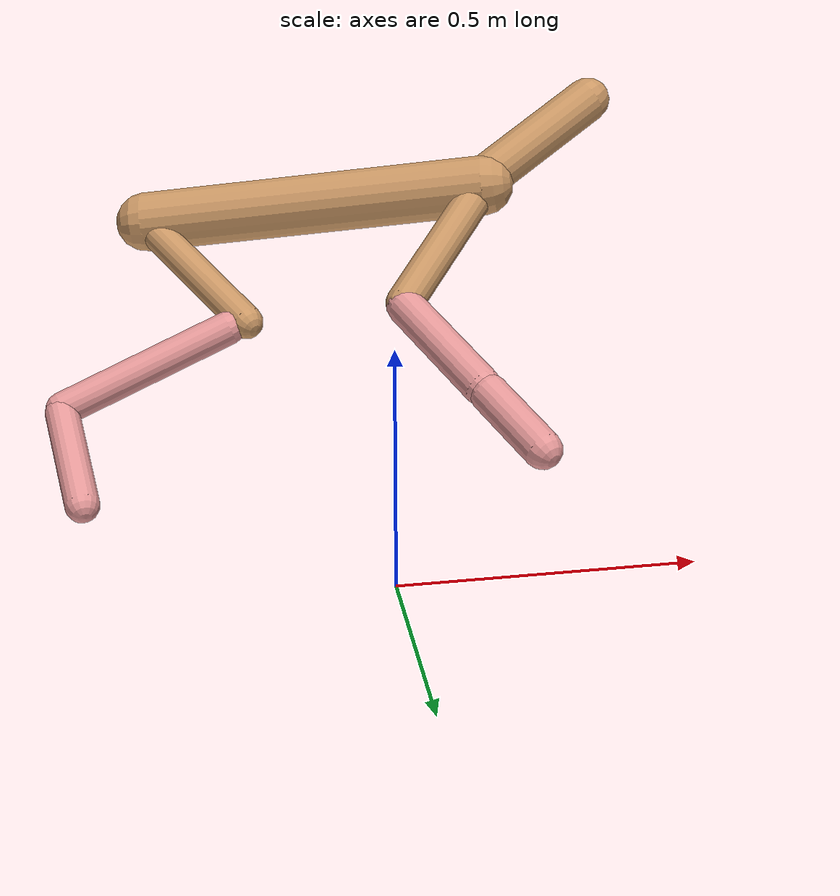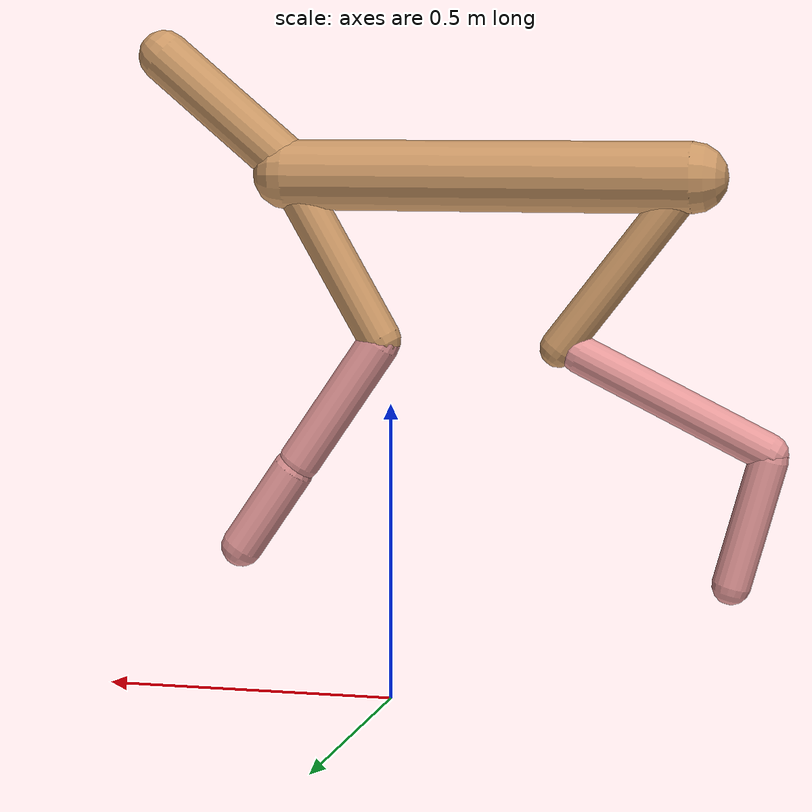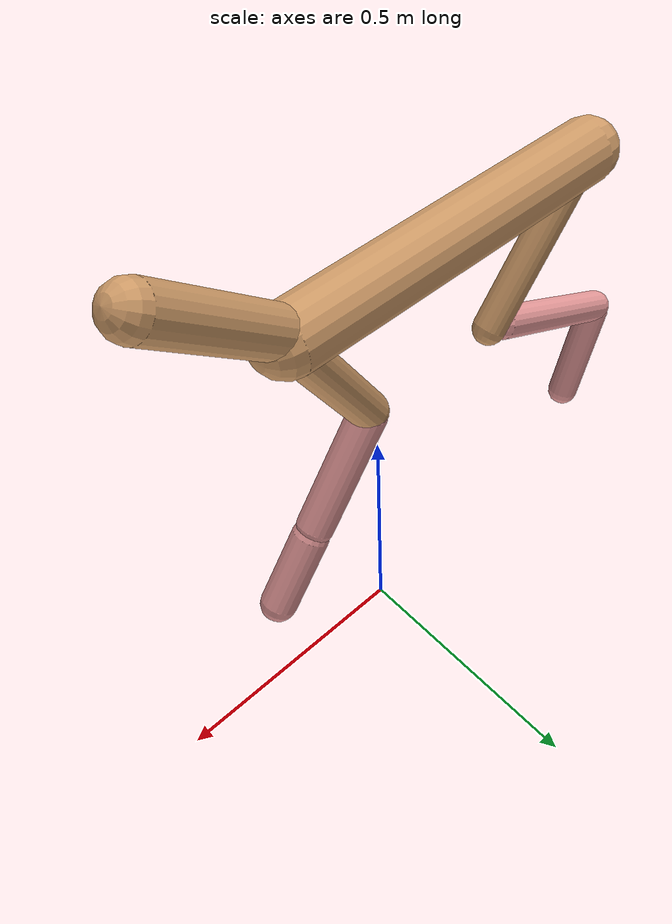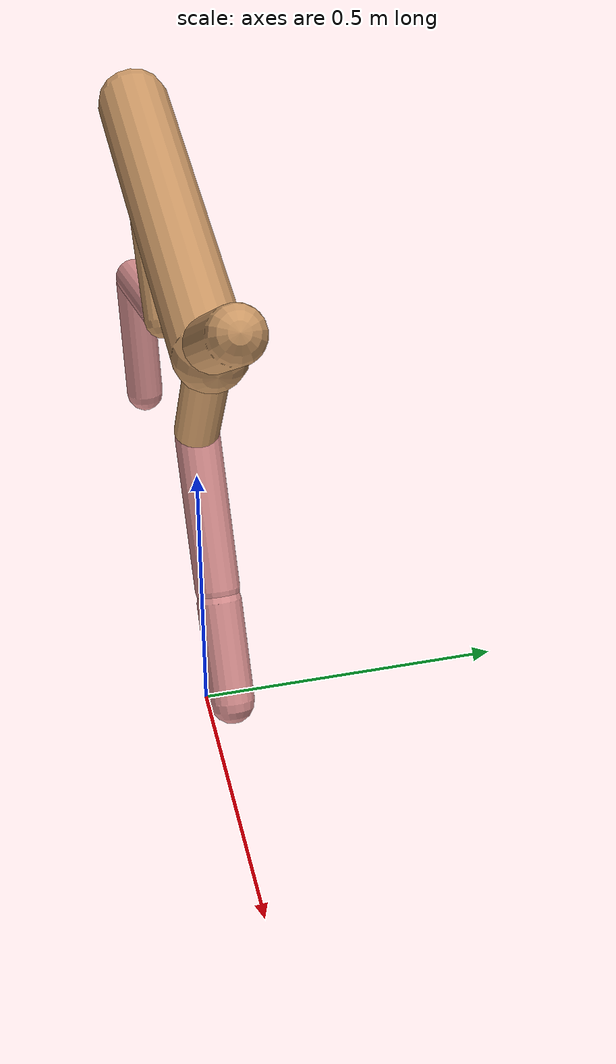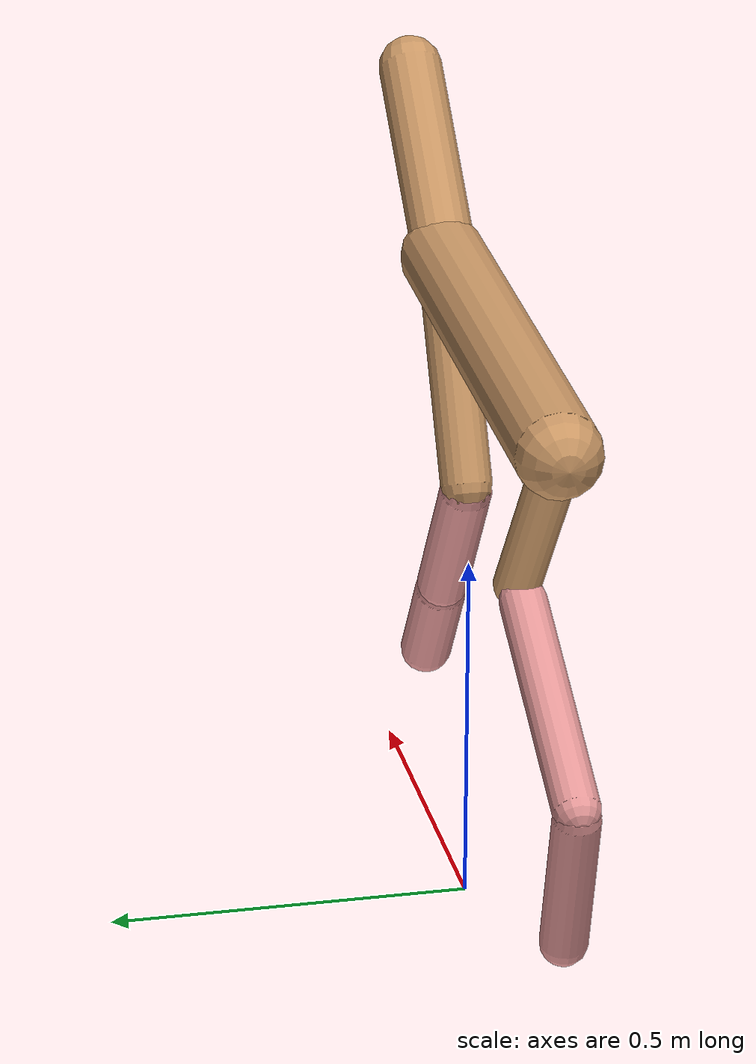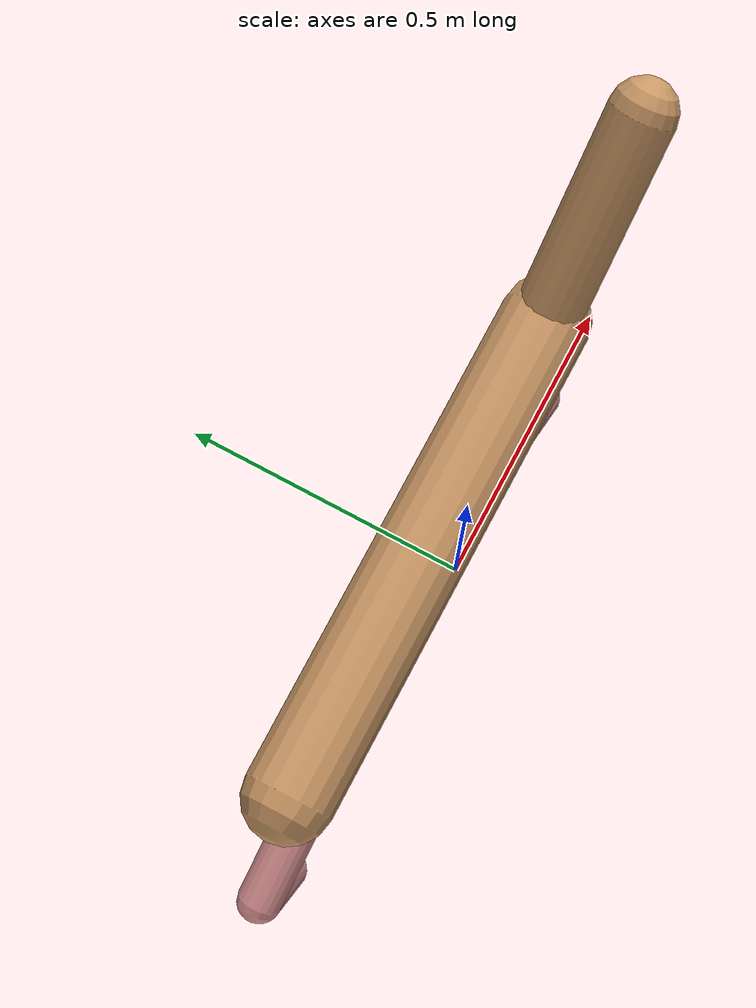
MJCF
<mujoco model="cheetah">
  <compiler angle="radian" coordinate="local" inertiafromgeom="true" settotalmass="14" />
  <default>
    <joint armature=".1" damping=".01" limited="true" solimplimit="0 .8 .03" solreflimit=".02 1" stiffness="8" />
    <geom conaffinity="0" condim="3" contype="1" friction="0.8 .1 .1" rgba="0.8 0.6 .4 1" solimp="0.0 0.8 0.01" solref="0.02 1" />
    <motor ctrllimited="true" ctrlrange="-1 1" />
  </default>
  <size nstack="300000" nuser_geom="1" />
  <option gravity="0 0 -9.81" timestep="0.01" />
  <worldbody>
    <body name="torso" pos="0.0 0.0 0.8805968023599999">
      <joint armature="0" axis="1 0 0" damping="0" limited="false" name="ignorex" pos="0 0 0" stiffness="0" type="slide" />
      <joint armature="0" axis="0 0 1" damping="0" limited="false" name="ignorez" pos="0 0 0" stiffness="0" type="slide" />
      <joint armature="0" axis="0 1 0" damping="0" limited="false" name="ignorey" pos="0 0 0" stiffness="0" type="hinge" />
      <geom fromto="-0.5 0.0 0.0 0.17570261653754315 0.0 0.0" name="torso" size="0.058462642393667594" type="capsule" />
      <geom axisangle="0 1 0 .87" name="head" pos="0.27570261653754313 0.0 0.1" size="0.04379349378284822 0.15" type="capsule" />

      <body name="bthigh" pos="-.5 0 0">
        <joint axis="0 1 0" damping="6" name="bthigh" pos="0 0 0" range="-.52 1.05" stiffness="240" type="hinge" />
        <geom axisangle="0 1 0 -3.8" name="bthigh" pos="0.11353068898069567 0.0 -0.14758989567490435" size="0.0322 0.16719197995101692" type="capsule" />
        <body name="bshin" pos="0.18706137796139133 0.0 -0.2851797913498087">
          <joint axis="0 1 0" damping="4.5" name="bshin" pos="0 0 0" range="-.785 .785" stiffness="180" type="hinge" />
          <geom axisangle="0 1 0 -2.03" name="bshin" pos="-0.1605335623692909 0.0 -0.08026678118464545" rgba="0.9 0.6 0.6 1" size="0.0322 0.17295722063898303" type="capsule" />
          <body name="bfoot" pos="-0.3210671247385818 0.0 -0.1605335623692909">
            <joint axis="0 1 0" damping="3" name="bfoot" pos="0 0 0" range="-.4 .785" stiffness="120" type="hinge" />
            <geom axisangle="0 1 0 -.27" name="bfoot" pos="0.03425078253599028 0.0 -0.11074419686636859" rgba="0.9 0.6 0.6 1" size="0.0322 0.1083865249337627" type="capsule" />
            <inertial mass="10" />
          </body>
        </body>
      </body>
      <body name="fthigh" pos="0.17570261653754315 0.0 0.0">
        <joint axis="0 1 0" damping="4.5" name="fthigh" pos="0 0 0" range="-1.5 0.8" stiffness="180" type="hinge" />
        <geom axisangle="0 1 0 .52" name="fthigh" pos="-0.08064145583369974 0.0 -0.13824249571491382" size="0.03568922653455674 0.1541194041622682" type="capsule" />
        <body name="fshin" pos="-0.16128291166739947 0.0 -0.27648499142982763">
          <joint axis="0 1 0" damping="3" name="fshin" pos="0 0 0" range="-1.2 1.1" stiffness="120" type="hinge" />
          <geom axisangle="0 1 0 -.6" name="fshin" pos="0.07485498070542783 0.0 -0.10364535789982314" rgba="0.9 0.6 0.6 1" size="0.03568922653455674 0.12283200632481524" type="capsule" />
          <body name="ffoot" pos="0.14970996141085566 0.0 -0.20729071579964628">
            <joint axis="0 1 0" damping="1.5" name="ffoot" pos="0 0 0" range="-3.1 -0.3" stiffness="60" type="hinge" />
            <geom axisangle="0 1 0 -.6" name="ffoot" pos="0.05101077796040233 0.0 -0.07935009904951475" rgba="0.9 0.6 0.6 1" size="0.03568922653455674 0.081115475874878" type="capsule" />
            <inertial mass="10" />
          </body>
        </body>
      </body>
    </body>
  </worldbody>
  <actuator>
    <motor gear="120" joint="bthigh" name="bthigh" />
    <motor gear="90" joint="bshin" name="bshin" />
    <motor gear="60" joint="bfoot" name="bfoot" />
    <motor gear="120" joint="fthigh" name="fthigh" />
    <motor gear="60" joint="fshin" name="fshin" />
    <motor gear="30" joint="ffoot" name="ffoot" />
  </actuator>
</mujoco>
